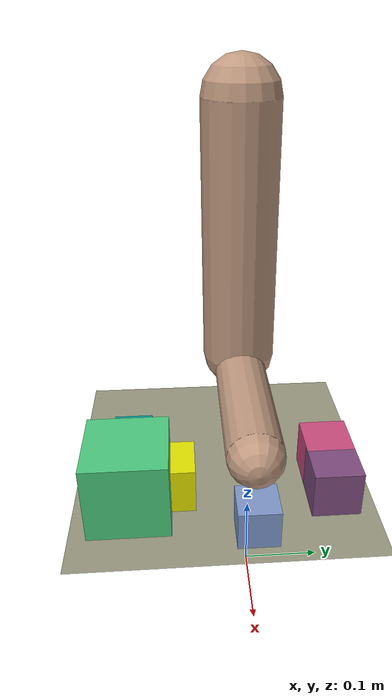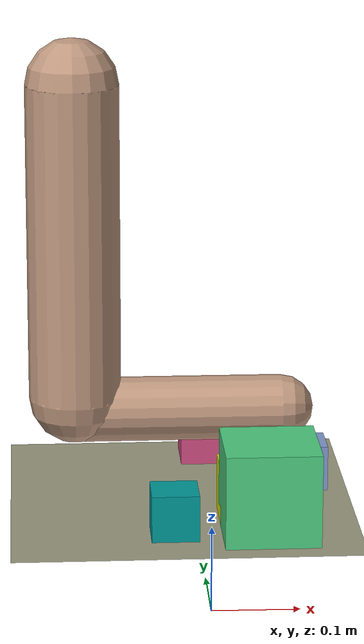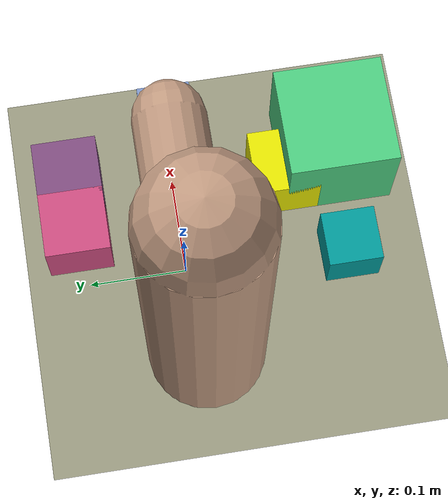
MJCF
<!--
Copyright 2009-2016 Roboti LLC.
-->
<mujoco model="arm_claw (v1.31)">
	<compiler 	inertiafromgeom="auto"
				angle="radian"/>

	<size 	nuser_jnt="1"
			nuser_geom="1"/>

	<option	timestep="0.001"
			gravity="0 0 -9.8"
			viscosity="0"
			iterations="20"/>

	<asset>
		<material name="MatGnd" specular=".3" shininess=".3" reflectance="0.3" rgba=".5 .55 .5 1"/>
	</asset>

	<default>
		<joint limited="true" damping="1" stiffness="0" armature=".1" user="0"/>
		<geom solref="0.008 1" solimp="0.95 0.95 0.01" margin="0.001" user="0"/>
		<motor ctrllimited="true" ctrlrange="-1 1"/>
		<position ctrllimited="true"/>

		<default class='0'>
			<geom friction="1 0.005 0.001" rgba=".75 .6 .5 1" contype="1" conaffinity="0"/>
		</default>

		<default class='1'>
			<geom friction="1 0.005 0.001" rgba=".7 .6 .55 1" contype="1" conaffinity="0"/>
		</default>

		<default class='arm'>
			<joint damping="5"/>
		</default>
	</default>

	<worldbody>
		<light directional="true" cutoff="40" exponent="10" diffuse=".4 .4 .4" specular=".7 .7 .7" pos="0 0 1.5" dir="0 0 -1"/>
		<geom name="tableTop" material="MatGnd" type="plane" pos="0.15 0 0.15" size="0.4 0.6 0.5" rgba=".6 .6 .5 1" contype="1" conaffinity="1"/>

		<!--  ================= ARM ================= /-->
		<body name="upperarm" pos="-0.15 0 0.6">
			<geom class="0" type="capsule" fromto="0 0 0 0 0 -0.345" size="0.05"/>
			<joint class='arm' name="s_abduction" type="hinge" pos="0 0 0" range="-1.57 .7" axis="1 0 0" user="001"/>
			<joint class='arm' name="s_flexion" type="hinge" pos="0 0 0" range="-.85 1.57" axis="0 -1 0" user="002"/>

			<body name="forearm" pos="0 0 -0.36">
				<geom class="0" type="capsule" fromto="0 0 0 0.225 0 0" size="0.035"/>
				<joint class='arm' name="e_flexion" type="hinge" pos="0 0 0" range="-1.5 1.05" axis="0 -1 0" user="004"/>
				<joint class='arm' name="e_pronation" type="hinge" pos="0 0 0" range="-1.5 1.57" axis="-1 0 0" user="005"/>
				<site name="end_effector" pos="0 0 0" size="0.01"/>
			</body>

		</body>

		<!--  ================= OBJECT ================= /-->
		<body name="a_object" pos="0.2 0.1 0.175">
			<geom density="1e4" type="box" name="a_box" pos="-0.1 -0.1 0" size="0.025 0.025 0.025" rgba="0.5 0.6 0.8 1" user="1" contype="0" conaffinity="1"/>
			<joint name="a_obj" type="free" limited='false' damping="0" armature="0"/>
		</body>
		<body name="b_object" pos="0.1 -0.2 0.2">
			<geom density="1e4" type="box" name="b_box" pos="-0.05 0.05 0" size="0.05 0.05 0.05" rgba="0.3 0.8 0.5 1" user="1" contype="1" conaffinity="1"/>
			<joint name="b_obj" type="free" limited='false' damping="0" armature="0"/>
		</body>
		<body name="c_object" pos="0.05 0.05 0.18">
			<geom density="1e4" type="box" name="c_box" pos="-0.05 0.05 0" size="0.03 0.03 0.03" rgba="0.8 0.3 0.5 1" user="1" contype="1" conaffinity="1"/>
			<joint name="c_obj" type="free" limited='false' damping="0" armature="0"/>
		</body>
		<body name="d_object" pos="0.1 0.05 0.18">
			<geom density="1e4" type="box" name="d_box" pos="-0.05 0.05 0" size="0.03 0.03 0.03" rgba="0.5 0.3 0.5 1" user="1" contype="1" conaffinity="1"/>
			<joint name="d_obj" type="free" limited='false' damping="0" armature="0"/>
		</body>
		<body name="e_object" pos="0.08 -0.15 0.18">
			<geom density="1e4" type="box" name="e_box" pos="-0.05 0.05 0" size="0.03 0.03 0.03" rgba="0.9 0.9 0.0 1" user="1" contype="1" conaffinity="1"/>
			<joint name="e_obj" type="free" limited='false' damping="0" armature="0"/>
		</body>
		<body name="f_object" pos="0.05 -0.05 0.175">
			<geom density="1e4" type="box" name="f_box" pos="-0.1 -0.1 0" size="0.025 0.025 0.025" rgba="0.0 0.6 0.6 1" user="1" contype="0" conaffinity="1"/>
			<joint name="f_obj" type="free" limited='false' damping="0" armature="0"/>
		</body>

	</worldbody>

	<actuator>

		<!--  ================= Torque actuators ================= /-->
		<motor joint='s_abduction' 	name='As_abduction' gear="100"/>
		<motor joint='s_flexion' 	name='As_flexion' 	gear="100"/>
		<motor joint='e_flexion' 	name='Ae_flexion' 	gear="70"/>
		<motor joint='e_pronation' 	name='Ae_pronation' gear="70"/>

		<!--  ================= Position actuators ================= /-->

	</actuator>

</mujoco>
